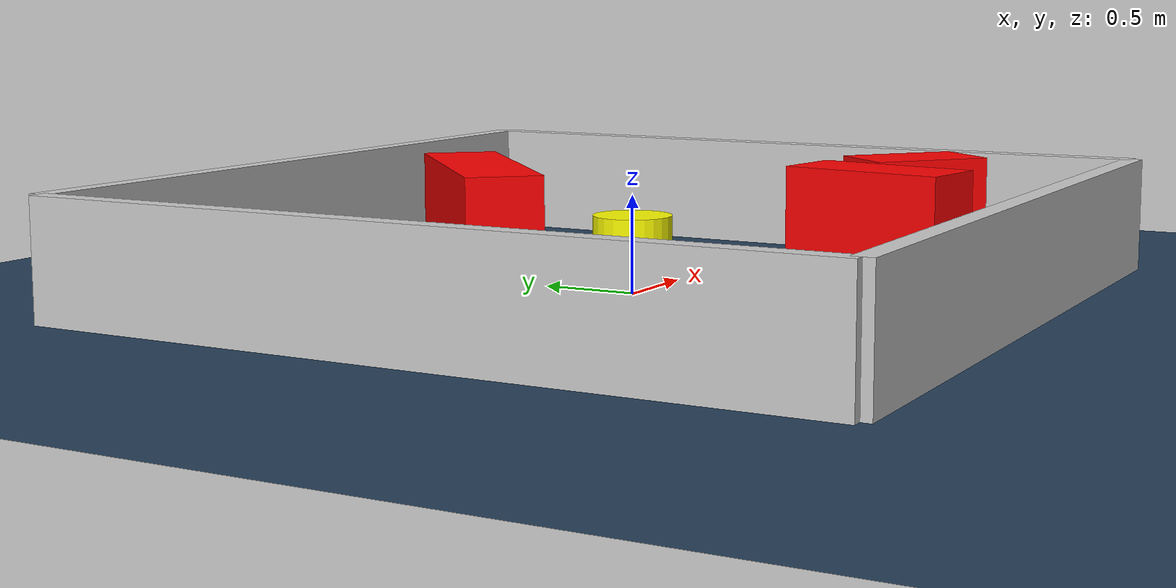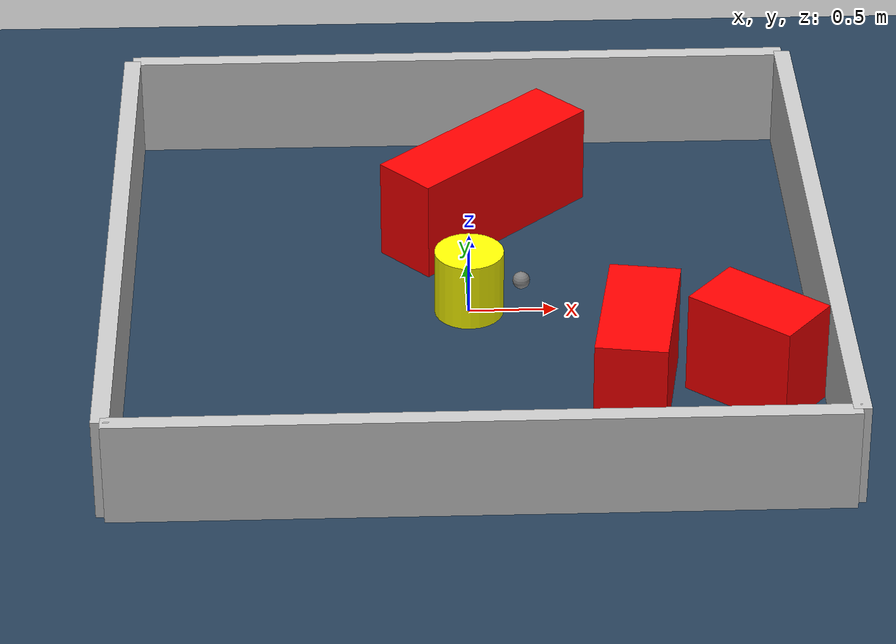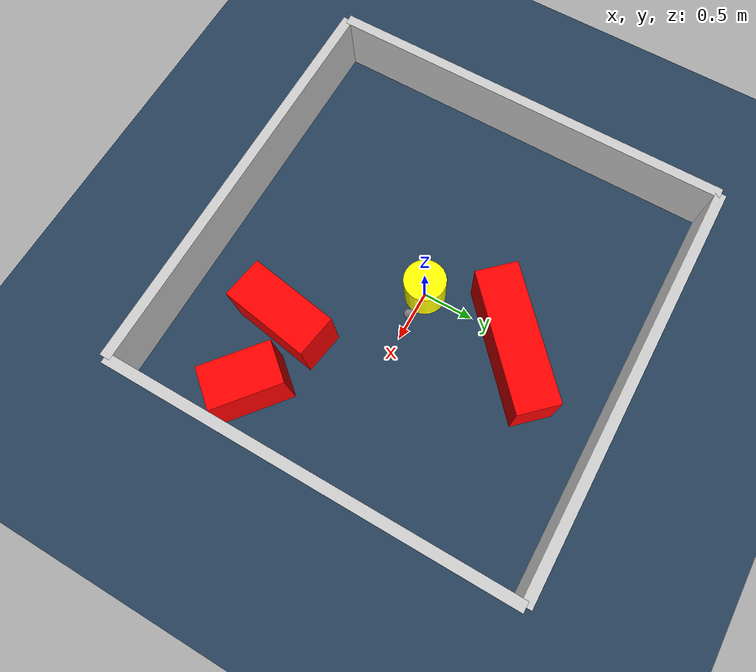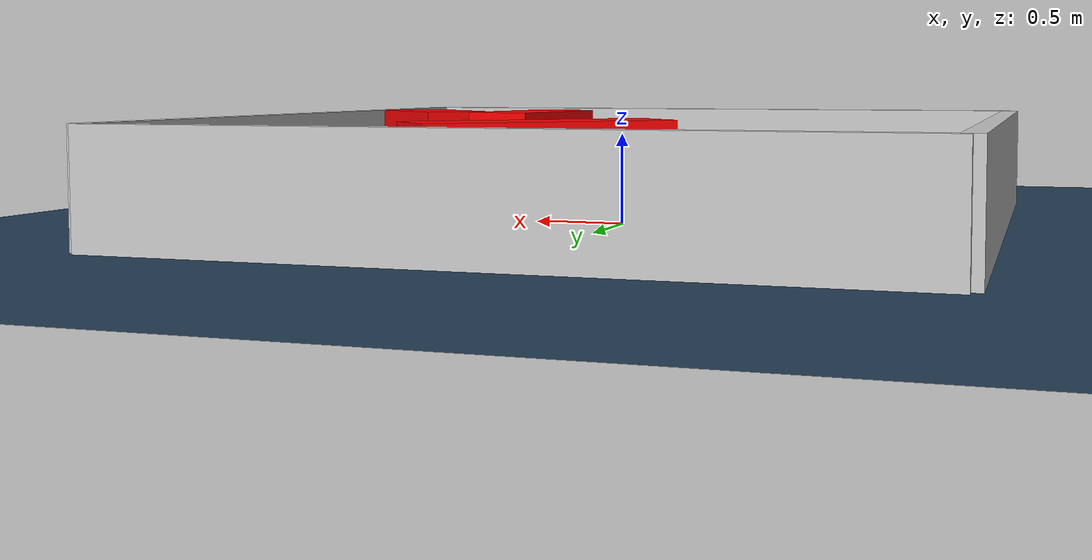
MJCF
<?xml version="1.0" ?>
<mujoco model="generated_environment">
  <option timestep="0.01" integrator="RK4" cone="elliptic"/>
  <default>
    <geom density="1"/>
  </default>
  <asset>
    <texture builtin="gradient" height="3072" rgb1="0.3 0.5 0.7" rgb2="0 0 0" type="skybox" width="512"/>
    <texture builtin="checker" height="300" mark="edge" markrgb="0.8 0.8 0.8" name="groundplane" rgb1="0.2 0.3 0.4" rgb2="0.1 0.2 0.3" type="2d" width="300"/>
    <material name="groundplane" reflectance="0.2" texrepeat="5 5" texture="groundplane" texuniform="true"/>
    <material name="robot" rgba="0.0 1.0 0.0 1"/>
  </asset>
  <worldbody>
    <light dir="0 0 -1" directional="true" pos="0 0 1.5"/>
    <geom condim="4" friction="1.0 0.005 0.001" material="groundplane" name="floor" size="0 0 0.05" type="plane"/>
    <body name="walls">
      <geom name="wall_1" condim="4" pos="-2.0 0.0 0.3" rgba="0.800000011920929 0.800000011920929 0.800000011920929 1.0" size="0.05 2.0 0.3" type="box"/>
      <geom name="wall_2" condim="4" pos="2.0 0.0 0.3" rgba="0.800000011920929 0.800000011920929 0.800000011920929 1.0" size="0.05 2.0 0.3" type="box"/>
      <geom name="wall_3" condim="4" pos="0.0 -2.0 0.3" rgba="0.800000011920929 0.800000011920929 0.800000011920929 1.0" size="2.0 0.05 0.3" type="box"/>
      <geom name="wall_4" condim="4" pos="0.0 2.0 0.3" rgba="0.800000011920929 0.800000011920929 0.800000011920929 1.0" size="2.0 0.05 0.3" type="box"/>
    </body>
    <body name="robot">
      <joint name="joint_x" type="slide" pos="0 0 0" axis="1 0 0"/>
      <joint name="joint_y" type="slide" pos="0 0 0" axis="0 1 0"/>
      <geom name="robot" type="sphere" pos="0.3 0.0 0.2" size="0.05" mass="5." friction="1.0 0.005 0.0001" condim="4" rgba="0.5 0.5 0.5 1.0"/>
      <site name="sensor_ball"/>
    </body>
    <body name="obstacle_movable_1">
      <geom name="obstacle_movable_1" condim="4" pos="0.0 0.0 0.2" euler="0 0 0.0" friction="1.0 0.005 0.001" rgba="1.0 1.0 0.0 1.0" size="0.2 0.2 0.0" type="cylinder" mass="0.1"/>
      <joint type="free"/>
    </body>
    <body name="obstacle_2_static">
      <geom name="obstacle_2_static" condim="4" pos="0.11830420945734699 0.9733804662111492 0.3" euler="0 0 43.19062697244577" friction="1.0 0.005 0.001" rgba="1 0 0 1" size="0.6578300686177018 0.2 0.3" type="box"/>
    </body>
    <body name="obstacle_3_static">
      <geom name="obstacle_3_static" condim="4" pos="1.564932131676756 -0.9161404195796905 0.3" euler="0 0 140.09841414803617" friction="1.0 0.005 0.001" rgba="1 0 0 1" size="0.334055039482485 0.2 0.3" type="box"/>
    </body>
    <body name="obstacle_4_static">
      <geom name="obstacle_4_static" condim="4" pos="0.8961447849709714 -0.9594169237802459 0.3" euler="0 0 260.7563270534478" friction="1.0 0.005 0.001" rgba="1 0 0 1" size="0.43682337516066794 0.2 0.3" type="box"/>
    </body>
  </worldbody>
  <actuator>
    <motor name="actuator_x" joint="joint_x" gear="1" ctrlrange="-1 1"/>
    <motor name="actuator_y" joint="joint_y" gear="1" ctrlrange="-1 1"/>
  </actuator>
</mujoco>
